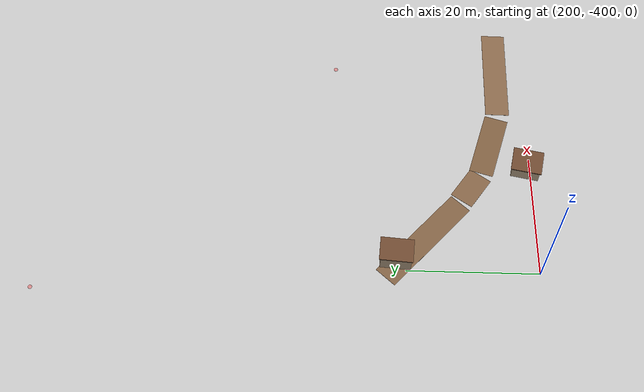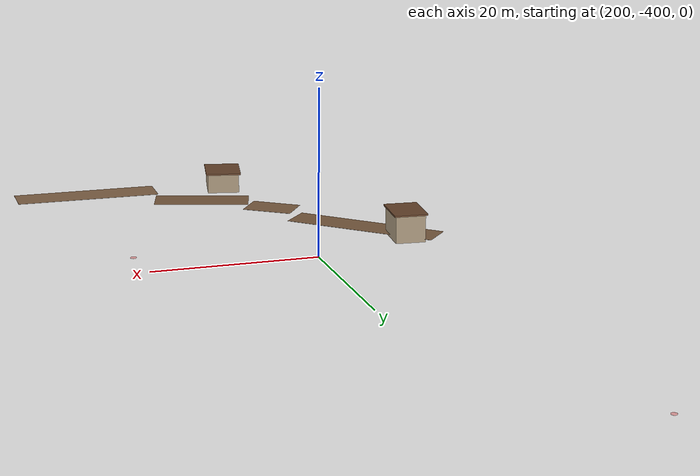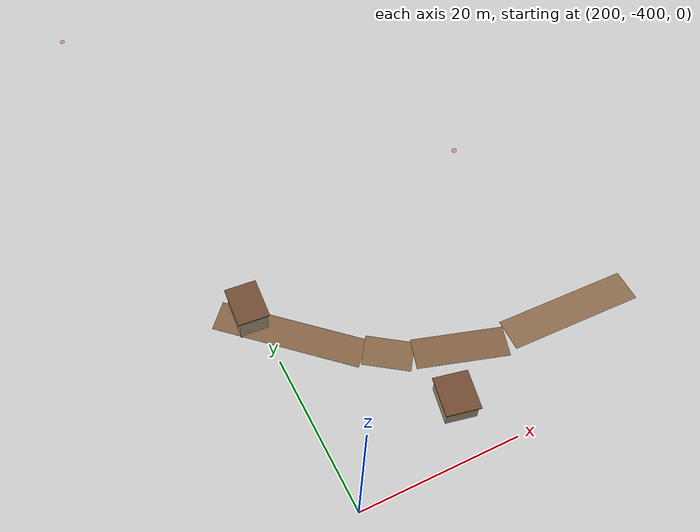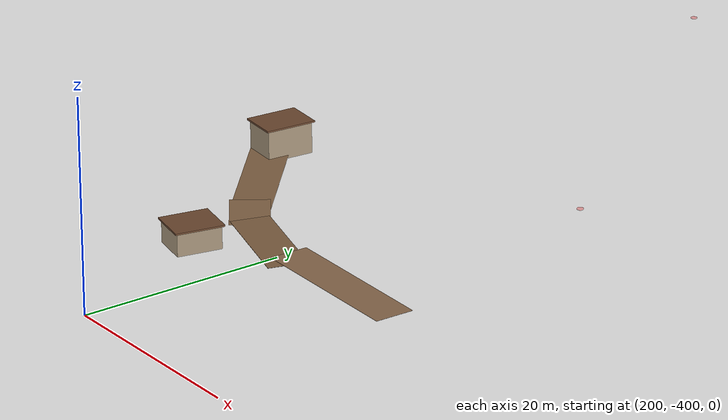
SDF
<sdf version="1.9">
 <world name="1779343687303_isr_rural_dynamic_v3">
  <gravity>0 0 -9.8066</gravity>
  <spherical_coordinates>
   <surface_model>EARTH_WGS84</surface_model>
   <latitude_deg>36.38591274143771</latitude_deg>
   <longitude_deg>-6.03973388671875</longitude_deg>
   <elevation>24.80000000000109</elevation>
  </spherical_coordinates>
  <physics type="ode">
   <max_step_size>0.004</max_step_size>
   <real_time_factor>1.0</real_time_factor>
   <real_time_update_rate>250</real_time_update_rate>
  </physics>
  <light type="directional" name="sun">
   <cast_shadows>false</cast_shadows>
   <pose>0 0 10 0 0 0</pose>
   <diffuse>0.8 0.8 0.8 1</diffuse>
   <specular>0.2 0.2 0.2 1</specular>
   <attenuation>
    <range>1000</range>
    <constant>0.9</constant>
    <linear>0.01</linear>
    <quadratic>0.001</quadratic>
   </attenuation>
   <direction>-0.5 0.1 -0.9</direction>
  </light>
  <model name="road_0001">
   <static>true</static>
   <pose>228.21 -393.45 11.47 0.0000 0.0000 3.1200</pose>
   <link name="link">
    <visual name="road">
     <geometry><box><size>15.01 3.50 0.02</size></box></geometry>
     <material><ambient>0.56 0.43 0.31 1</ambient><diffuse>0.56 0.43 0.31 1</diffuse></material>
    </visual>
   </link>
  </model>
  <model name="road_0002">
   <static>true</static>
   <pose>215.86 -391.86 10.33 0.0000 0.0000 2.8500</pose>
   <link name="link">
    <visual name="road">
     <geometry><box><size>10.11 3.50 0.02</size></box></geometry>
     <material><ambient>0.52 0.39 0.27 1</ambient><diffuse>0.52 0.39 0.27 1</diffuse></material>
    </visual>
   </link>
  </model>
  <model name="road_0003">
   <static>true</static>
   <pose>208.84 -388.89 9.75 0.0000 0.0000 2.5300</pose>
   <link name="link">
    <visual name="road">
     <geometry><box><size>5.31 3.50 0.02</size></box></geometry>
     <material><ambient>0.54 0.41 0.29 1</ambient><diffuse>0.54 0.41 0.29 1</diffuse></material>
    </visual>
   </link>
  </model>
  <model name="road_0004">
   <static>true</static>
   <pose>200.58 -381.77 8.92 0.0000 0.0000 2.4000</pose>
   <link name="link">
    <visual name="road">
     <geometry><box><size>16.54 3.50 0.02</size></box></geometry>
     <material><ambient>0.53 0.40 0.28 1</ambient><diffuse>0.53 0.40 0.28 1</diffuse></material>
    </visual>
   </link>
  </model>
  <model name="shed_0001">
   <static>true</static>
   <pose>197.50 -377.68 8.62 0.0000 0.0000 4.6300</pose>
   <link name="link">
    <visual name="walls">
     <geometry><box><size>4.35 3.17 2.89</size></box></geometry>
     <pose>0 0 1.45 0 0 0</pose>
     <material><ambient>0.65 0.58 0.48 1</ambient><diffuse>0.65 0.58 0.48 1</diffuse></material>
    </visual>
    <visual name="roof">
     <geometry><box><size>4.75 3.57 0.15</size></box></geometry>
     <pose>0 0 2.97 0 0 0</pose>
     <material><ambient>0.45 0.30 0.20 1</ambient><diffuse>0.45 0.30 0.20 1</diffuse></material>
    </visual>
   </link>
  </model>
  <model name="shed_0002">
   <static>true</static>
   <pose>212.19 -397.02 10.06 0.0000 0.0000 1.3700</pose>
   <link name="link">
    <visual name="walls">
     <geometry><box><size>4.01 3.40 2.03</size></box></geometry>
     <pose>0 0 1.01 0 0 0</pose>
     <material><ambient>0.65 0.58 0.48 1</ambient><diffuse>0.65 0.58 0.48 1</diffuse></material>
    </visual>
    <visual name="roof">
     <geometry><box><size>4.41 3.80 0.15</size></box></geometry>
     <pose>0 0 2.11 0 0 0</pose>
     <material><ambient>0.45 0.30 0.20 1</ambient><diffuse>0.45 0.30 0.20 1</diffuse></material>
    </visual>
   </link>
  </model>
  <model name="concealment_zone_0">
   <static>true</static>
   <pose>228.37 -369.00 11.73 0.0000 0.0000 0.0000</pose>
   <link name="link">
    <visual name="marker">
     <geometry><cylinder><radius>0.3</radius><length>0.05</length></cylinder></geometry>
     <material><ambient>1 0 0 0.3</ambient><diffuse>1 0 0 0.3</diffuse></material>
    </visual>
   </link>
  </model>
  <model name="concealment_zone_1">
   <static>true</static>
   <pose>192.32 -326.35 7.71 0.0000 0.0000 0.0000</pose>
   <link name="link">
    <visual name="marker">
     <geometry><cylinder><radius>0.3</radius><length>0.05</length></cylinder></geometry>
     <material><ambient>1 0 0 0.3</ambient><diffuse>1 0 0 0.3</diffuse></material>
    </visual>
   </link>
  </model>
 </world>
</sdf>
